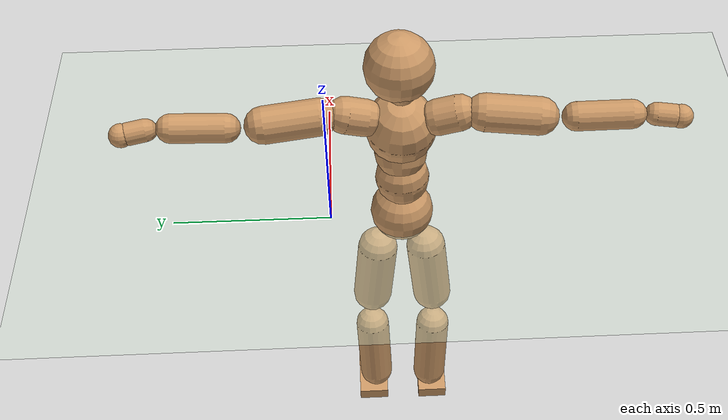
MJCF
<mujoco model="humanoid">
  <compiler coordinate="local"/>
  <default>
    <joint damping="0.0" armature="0.01" stiffness="0.0" limited="true"/>
    <geom conaffinity="1" condim="3" contype="7" margin="0.001" rgba="0.8 0.6 .4 1"/>
  </default>
  <asset>
    <texture type="skybox" builtin="gradient" rgb1=".4 .5 .6" rgb2="0 0 0" width="100" height="100"/>
    <texture builtin="flat" height="1278" mark="cross" markrgb="1 1 1" name="texgeom" random="0.01" rgb1="0.8 0.6 0.4" rgb2="0.8 0.6 0.4" type="cube" width="127"/>
    <texture builtin="checker" height="100" name="texplane" rgb1="0 0 0" rgb2="0.8 0.8 0.8" type="2d" width="100"/>
    <material name="MatPlane" reflectance="0.5" shininess="1" specular="1" texrepeat="60 60" texture="texplane"/>
    <material name="geom" texture="texgeom" texuniform="true"/>
  </asset>
  <worldbody>
    <light cutoff="100" diffuse="1 1 1" dir="-0 0 -1.3" directional="true" exponent="1" pos="0 0 1.3" specular=".1 .1 .1"/>
    <geom conaffinity="1" condim="3" name="floor" pos="0 0 0" rgba="0.8 0.9 0.8 1" size="100 100 .2" type="plane" material="MatPlane"/>
    <body name="Pelvis" pos="-0.002 -0.2262 0.0333">
      <freejoint name="Pelvis"/>
      <geom type="sphere" contype="1" conaffinity="1" density="500" size="0.0988" pos="0.0000 0.0000 0.0000" name="Pelvis"/>
      <body name="L_Hip" pos="-0.004 0.072 -0.0931">
        <joint name="L_Hip_x" type="hinge" pos="0 0 0" axis="1 0 0" user="250 2.5 1 500 10 2" armature="0.01" range="-90.0000 90.0000" damping="0" stiffness="0"/>
        <joint name="L_Hip_y" type="hinge" pos="0 0 0" axis="0 1 0" user="250 2.5 1 500 10 2" armature="0.01" range="-90.0000 90.0000" damping="0" stiffness="0"/>
        <joint name="L_Hip_z" type="hinge" pos="0 0 0" axis="0 0 1" user="250 2.5 1 500 10 2" armature="0.01" range="-90.0000 90.0000" damping="0" stiffness="0"/>
        <geom type="capsule" contype="1" conaffinity="1" density="500" fromto="-0.0011 0.0071 -0.0770 -0.0044 0.0284 -0.3081" size="0.0643" name="L_Hip"/>
        <body name="L_Knee" pos="-0.0055 0.0355 -0.3851">
          <joint name="L_Knee_x" type="hinge" pos="0 0 0" axis="1 0 0" user="250 2.5 1 500 10 2" armature="0.01" range="-5.6250 5.6250" damping="0" stiffness="0"/>
          <joint name="L_Knee_y" type="hinge" pos="0 0 0" axis="0 1 0" user="250 2.5 1 500 10 2" armature="0.01" range="0.0000 180.0000" damping="0" stiffness="0"/>
          <joint name="L_Knee_z" type="hinge" pos="0 0 0" axis="0 0 1" user="250 2.5 1 500 10 2" armature="0.01" range="-5.6250 5.6250" damping="0" stiffness="0"/>
          <geom type="capsule" contype="1" conaffinity="1" density="500" fromto="-0.0092 -0.0029 -0.0825 -0.0366 -0.0115 -0.3299" size="0.0562" name="L_Knee"/>
          <body name="L_Ankle" pos="-0.0458 -0.0144 -0.4124">
            <joint name="L_Ankle_x" type="hinge" pos="0 0 0" axis="1 0 0" user="150 2.5 1 500 10 2" armature="0.01" range="-45.0000 45.0000" damping="0" stiffness="0"/>
            <joint name="L_Ankle_y" type="hinge" pos="0 0 0" axis="0 1 0" user="150 2.5 1 500 10 2" armature="0.01" range="-90.0000 90.0000" damping="0" stiffness="0"/>
            <joint name="L_Ankle_z" type="hinge" pos="0 0 0" axis="0 0 1" user="150 2.5 1 500 10 2" armature="0.01" range="-45.0000 45.0000" damping="0" stiffness="0"/>
            <geom type="box" contype="1" conaffinity="1" density="500" pos="0.0613 0.0140 -0.0286" size="0.0875 0.0505 0.0215" quat="1.0000 0.0000 0.0000 0.0000" name="L_Ankle"/>
            <body name="L_Toe" pos="0.1227 0.0281 -0.0573">
              <joint name="L_Toe_x" type="hinge" pos="0 0 0" axis="1 0 0" user="150 1 1 500 1 1" armature="0.01" range="-180.0000 180.0000" damping="0" stiffness="0"/>
              <joint name="L_Toe_y" type="hinge" pos="0 0 0" axis="0 1 0" user="150 1 1 500 1 1" armature="0.01" range="-180.0000 180.0000" damping="0" stiffness="0"/>
              <joint name="L_Toe_z" type="hinge" pos="0 0 0" axis="0 0 1" user="150 1 1 500 1 1" armature="0.01" range="-180.0000 180.0000" damping="0" stiffness="0"/>
              <geom type="box" contype="1" conaffinity="1" density="500" pos="0.0623 -0.0140 0.0277" size="0.0211 0.0495 0.0205" quat="1.0000 0.0000 0.0000 0.0000" name="L_Toe"/>
            </body>
          </body>
        </body>
      </body>
      <body name="R_Hip" pos="-0.0018 -0.0704 -0.0923">
        <joint name="R_Hip_x" type="hinge" pos="0 0 0" axis="1 0 0" user="250 2.5 1 500 10 2" armature="0.01" range="-90.0000 90.0000" damping="0" stiffness="0"/>
        <joint name="R_Hip_y" type="hinge" pos="0 0 0" axis="0 1 0" user="250 2.5 1 500 10 2" armature="0.01" range="-90.0000 90.0000" damping="0" stiffness="0"/>
        <joint name="R_Hip_z" type="hinge" pos="0 0 0" axis="0 0 1" user="250 2.5 1 500 10 2" armature="0.01" range="-90.0000 90.0000" damping="0" stiffness="0"/>
        <geom type="capsule" contype="1" conaffinity="1" density="500" fromto="-0.0021 -0.0079 -0.0786 -0.0084 -0.0315 -0.3145" size="0.0632" name="R_Hip"/>
        <body name="R_Knee" pos="-0.0105 -0.0393 -0.3931">
          <joint name="R_Knee_x" type="hinge" pos="0 0 0" axis="1 0 0" user="250 2.5 1 500 10 2" armature="0.01" range="-5.6250 5.6250" damping="0" stiffness="0"/>
          <joint name="R_Knee_y" type="hinge" pos="0 0 0" axis="0 1 0" user="250 2.5 1 500 10 2" armature="0.01" range="0.0000 180.0000" damping="0" stiffness="0"/>
          <joint name="R_Knee_z" type="hinge" pos="0 0 0" axis="0 0 1" user="250 2.5 1 500 10 2" armature="0.01" range="-5.6250 5.6250" damping="0" stiffness="0"/>
          <geom type="capsule" contype="1" conaffinity="1" density="500" fromto="-0.0089 0.0033 -0.0827 -0.0356 0.0131 -0.3306" size="0.056" name="R_Knee"/>
          <body name="R_Ankle" pos="-0.0445 0.0164 -0.4133">
            <joint name="R_Ankle_x" type="hinge" pos="0 0 0" axis="1 0 0" user="150 1 1 500 10 2" armature="0.01" range="-45.0000 45.0000" damping="0" stiffness="0"/>
            <joint name="R_Ankle_y" type="hinge" pos="0 0 0" axis="0 1 0" user="150 1 1 500 10 2" armature="0.01" range="-90.0000 90.0000" damping="0" stiffness="0"/>
            <joint name="R_Ankle_z" type="hinge" pos="0 0 0" axis="0 0 1" user="150 1 1 500 10 2" armature="0.01" range="-45.0000 45.0000" damping="0" stiffness="0"/>
            <geom type="box" contype="1" conaffinity="1" density="500" pos="0.0634 -0.0144 -0.0250" size="0.0887 0.0499 0.0217" quat="1.0000 0.0000 0.0000 0.0000" name="R_Ankle"/>
            <body name="R_Toe" pos="0.1269 -0.0289 -0.05">
              <joint name="R_Toe_x" type="hinge" pos="0 0 0" axis="1 0 0" user="150 1 1 500 1 1" armature="0.01" range="-180.0000 180.0000" damping="0" stiffness="0"/>
              <joint name="R_Toe_y" type="hinge" pos="0 0 0" axis="0 1 0" user="150 1 1 500 1 1" armature="0.01" range="-180.0000 180.0000" damping="0" stiffness="0"/>
              <joint name="R_Toe_z" type="hinge" pos="0 0 0" axis="0 0 1" user="150 1 1 500 1 1" armature="0.01" range="-180.0000 180.0000" damping="0" stiffness="0"/>
              <geom type="box" contype="1" conaffinity="1" density="500" pos="0.0644 0.0144 0.0251" size="0.021 0.0496 0.0217" quat="1.0000 0.0000 0.0000 0.0000" name="R_Toe"/>
            </body>
          </body>
        </body>
      </body>
      <body name="Torso" pos="-0.0323 -0.0025 0.1129">
        <joint name="Torso_x" type="hinge" pos="0 0 0" axis="1 0 0" user="500 5 1 500 10 2" armature="0.01" range="-60.0000 60.0000" damping="0" stiffness="0"/>
        <joint name="Torso_y" type="hinge" pos="0 0 0" axis="0 1 0" user="500 5 1 500 10 2" armature="0.01" range="-60.0000 60.0000" damping="0" stiffness="0"/>
        <joint name="Torso_z" type="hinge" pos="0 0 0" axis="0 0 1" user="500 5 1 500 10 2" armature="0.01" range="-60.0000 60.0000" damping="0" stiffness="0"/>
        <geom type="capsule" contype="1" conaffinity="1" density="500" fromto="0.0000 0.0026 0.0609 0.0000 0.0032 0.0744" size="0.0818" name="Torso"/>
        <body name="Spine" pos="0.0001 0.0058 0.1352">
          <joint name="Spine_x" type="hinge" pos="0 0 0" axis="1 0 0" user="500 5 1 500 10 2" armature="0.01" range="-60.0000 60.0000" damping="0" stiffness="0"/>
          <joint name="Spine_y" type="hinge" pos="0 0 0" axis="0 1 0" user="500 5 1 500 10 2" armature="0.01" range="-60.0000 60.0000" damping="0" stiffness="0"/>
          <joint name="Spine_z" type="hinge" pos="0 0 0" axis="0 0 1" user="500 5 1 500 10 2" armature="0.01" range="-60.0000 60.0000" damping="0" stiffness="0"/>
          <geom type="capsule" contype="1" conaffinity="1" density="500" fromto="0.0116 0.0006 0.0243 0.0142 0.0007 0.0297" size="0.0798" name="Spine"/>
          <body name="Chest" pos="0.0259 0.0013 0.0539">
            <joint name="Chest_x" type="hinge" pos="0 0 0" axis="1 0 0" user="500 5 1 500 10 2" armature="0.01" range="-60.0000 60.0000" damping="0" stiffness="0"/>
            <joint name="Chest_y" type="hinge" pos="0 0 0" axis="0 1 0" user="500 5 1 500 10 2" armature="0.01" range="-60.0000 60.0000" damping="0" stiffness="0"/>
            <joint name="Chest_z" type="hinge" pos="0 0 0" axis="0 0 1" user="500 5 1 500 10 2" armature="0.01" range="-60.0000 60.0000" damping="0" stiffness="0"/>
            <geom type="capsule" contype="1" conaffinity="1" density="500" fromto="-0.0170 -0.0009 0.0699 -0.0208 -0.0011 0.0854" size="0.1051" name="Chest"/>
            <body name="Neck" pos="-0.0425 -0.0029 0.218">
              <joint name="Neck_x" type="hinge" pos="0 0 0" axis="1 0 0" user="150 1 1 250 50 4" armature="0.01" range="-5.6250 5.6250" damping="0" stiffness="0"/>
              <joint name="Neck_y" type="hinge" pos="0 0 0" axis="0 1 0" user="150 1 1 250 50 4" armature="0.01" range="-90.0000 90.0000" damping="0" stiffness="0"/>
              <joint name="Neck_z" type="hinge" pos="0 0 0" axis="0 0 1" user="150 1 1 250 50 4" armature="0.01" range="-90.0000 90.0000" damping="0" stiffness="0"/>
              <geom type="capsule" contype="1" conaffinity="1" density="500" fromto="0.0101 0.0010 0.0127 0.0405 0.0041 0.0507" size="0.0454" name="Neck"/>
              <body name="Head" pos="0.0507 0.0052 0.0634">
                <joint name="Head_x" type="hinge" pos="0 0 0" axis="1 0 0" user="150 1 1 250 50 4" armature="0.01" range="-5.6250 5.6250" damping="0" stiffness="0"/>
                <joint name="Head_y" type="hinge" pos="0 0 0" axis="0 1 0" user="150 1 1 250 50 4" armature="0.01" range="-90.0000 90.0000" damping="0" stiffness="0"/>
                <joint name="Head_z" type="hinge" pos="0 0 0" axis="0 0 1" user="150 1 1 250 50 4" armature="0.01" range="-90.0000 90.0000" damping="0" stiffness="0"/>
                <geom type="sphere" contype="1" conaffinity="1" density="500" size="0.1032" pos="0.0000 0.0000 0.0000" name="Head"/>
              </body>
            </body>
            <body name="L_Thorax" pos="-0.0331 0.0835 0.1255">
              <joint name="L_Thorax_x" type="hinge" pos="0 0 0" axis="1 0 0" user="200 2 1 500 50 4" armature="0.01" range="-5.6250 5.6250" damping="0" stiffness="0"/>
              <joint name="L_Thorax_y" type="hinge" pos="0 0 0" axis="0 1 0" user="200 2 1 500 50 4" armature="0.01" range="-5.6250 5.6250" damping="0" stiffness="0"/>
              <joint name="L_Thorax_z" type="hinge" pos="0 0 0" axis="0 0 1" user="200 2 1 500 50 4" armature="0.01" range="-5.6250 5.6250" damping="0" stiffness="0"/>
              <geom type="capsule" contype="1" conaffinity="1" density="500" fromto="-0.0021 0.0192 0.0063 -0.0086 0.0768 0.0251" size="0.0551" name="L_Thorax"/>
              <body name="L_Shoulder" pos="-0.0107 0.096 0.0314">
                <joint name="L_Shoulder_x" type="hinge" pos="0 0 0" axis="1 0 0" user="200 2 1 500 50 4" armature="0.01" range="-720.0000 720.0000" damping="0" stiffness="0"/>
                <joint name="L_Shoulder_y" type="hinge" pos="0 0 0" axis="0 1 0" user="200 2 1 500 50 4" armature="0.01" range="-720.0000 720.0000" damping="0" stiffness="0"/>
                <joint name="L_Shoulder_z" type="hinge" pos="0 0 0" axis="0 0 1" user="200 2 1 500 50 4" armature="0.01" range="-720.0000 720.0000" damping="0" stiffness="0"/>
                <geom type="capsule" contype="1" conaffinity="1" density="500" fromto="-0.0059 0.0533 -0.0027 -0.0235 0.2134 -0.0109" size="0.0552" name="L_Shoulder"/>
                <body name="L_Elbow" pos="-0.0293 0.2667 -0.0136">
                  <joint name="L_Elbow_x" type="hinge" pos="0 0 0" axis="1 0 0" user="150 1 1 150 10 2" armature="0.01" range="-5.6250 5.6250" damping="0" stiffness="0"/>
                  <joint name="L_Elbow_y" type="hinge" pos="0 0 0" axis="0 1 0" user="150 1 1 150 10 2" armature="0.01" range="-5.6250 5.6250" damping="0" stiffness="0"/>
                  <joint name="L_Elbow_z" type="hinge" pos="0 0 0" axis="0 0 1" user="150 1 1 150 10 2" armature="0.01" range="-180.0000 0.0000" damping="0" stiffness="0"/>
                  <geom type="capsule" contype="1" conaffinity="1" density="500" fromto="-0.0002 0.0517 0.0020 -0.0007 0.2069 0.0078" size="0.0427" name="L_Elbow"/>
                  <body name="L_Wrist" pos="-0.0008 0.2586 0.0098">
                    <joint name="L_Wrist_x" type="hinge" pos="0 0 0" axis="1 0 0" user="100 1 1 150 1 1" armature="0.01" range="-180.0000 180.0000" damping="0" stiffness="0"/>
                    <joint name="L_Wrist_y" type="hinge" pos="0 0 0" axis="0 1 0" user="100 1 1 150 1 1" armature="0.01" range="-180.0000 180.0000" damping="0" stiffness="0"/>
                    <joint name="L_Wrist_z" type="hinge" pos="0 0 0" axis="0 0 1" user="100 1 1 150 1 1" armature="0.01" range="-180.0000 180.0000" damping="0" stiffness="0"/>
                    <geom type="capsule" contype="1" conaffinity="1" density="500" fromto="-0.0032 0.0175 -0.0015 -0.0127 0.0699 -0.0062" size="0.0331" name="L_Wrist"/>
                    <body name="L_Hand" pos="-0.0159 0.0873 -0.0077">
                      <joint name="L_Hand_x" type="hinge" pos="0 0 0" axis="1 0 0" user="50 1 1 150 1 1" armature="0.01" range="-180.0000 180.0000" damping="0" stiffness="0"/>
                      <joint name="L_Hand_y" type="hinge" pos="0 0 0" axis="0 1 0" user="50 1 1 150 1 1" armature="0.01" range="-180.0000 180.0000" damping="0" stiffness="0"/>
                      <joint name="L_Hand_z" type="hinge" pos="0 0 0" axis="0 0 1" user="50 1 1 150 1 1" armature="0.01" range="-180.0000 180.0000" damping="0" stiffness="0"/>
                      <geom type="sphere" contype="1" conaffinity="1" density="500" size="0.0349" pos="0.0000 0.0000 0.0000" name="L_Hand"/>
                    </body>
                  </body>
                </body>
              </body>
            </body>
            <body name="R_Thorax" pos="-0.0377 -0.0867 0.1223">
              <joint name="R_Thorax_x" type="hinge" pos="0 0 0" axis="1 0 0" user="200 2 1 150 10 2" armature="0.01" range="-5.6250 5.6250" damping="0" stiffness="0"/>
              <joint name="R_Thorax_y" type="hinge" pos="0 0 0" axis="0 1 0" user="200 2 1 150 10 2" armature="0.01" range="-5.6250 5.6250" damping="0" stiffness="0"/>
              <joint name="R_Thorax_z" type="hinge" pos="0 0 0" axis="0 0 1" user="200 2 1 150 10 2" armature="0.01" range="-5.6250 5.6250" damping="0" stiffness="0"/>
              <geom type="capsule" contype="1" conaffinity="1" density="500" fromto="-0.0020 -0.0203 0.0068 -0.0079 -0.0811 0.0271" size="0.054" name="R_Thorax"/>
              <body name="R_Shoulder" pos="-0.0099 -0.1014 0.0338">
                <joint name="R_Shoulder_x" type="hinge" pos="0 0 0" axis="1 0 0" user="200 2 1 250 10 2" armature="0.01" range="-720.0000 720.0000" damping="0" stiffness="0"/>
                <joint name="R_Shoulder_y" type="hinge" pos="0 0 0" axis="0 1 0" user="200 2 1 250 10 2" armature="0.01" range="-720.0000 720.0000" damping="0" stiffness="0"/>
                <joint name="R_Shoulder_z" type="hinge" pos="0 0 0" axis="0 0 1" user="200 2 1 250 10 2" armature="0.01" range="-720.0000 720.0000" damping="0" stiffness="0"/>
                <geom type="capsule" contype="1" conaffinity="1" density="500" fromto="-0.0047 -0.0522 -0.0027 -0.0190 -0.2089 -0.0109" size="0.0565" name="R_Shoulder"/>
                <body name="R_Elbow" pos="-0.0237 -0.2612 -0.0136">
                  <joint name="R_Elbow_x" type="hinge" pos="0 0 0" axis="1 0 0" user="150 1 1 150 10 2" armature="0.01" range="-5.6250 5.6250" damping="0" stiffness="0"/>
                  <joint name="R_Elbow_y" type="hinge" pos="0 0 0" axis="0 1 0" user="150 1 1 150 10 2" armature="0.01" range="-5.6250 5.6250" damping="0" stiffness="0"/>
                  <joint name="R_Elbow_z" type="hinge" pos="0 0 0" axis="0 0 1" user="150 1 1 150 10 2" armature="0.01" range="0.0000 180.0000" damping="0" stiffness="0"/>
                  <geom type="capsule" contype="1" conaffinity="1" density="500" fromto="-0.0011 -0.0527 0.0016 -0.0044 -0.2107 0.0064" size="0.043" name="R_Elbow"/>
                  <body name="R_Wrist" pos="-0.0055 -0.2634 0.008">
                    <joint name="R_Wrist_x" type="hinge" pos="0 0 0" axis="1 0 0" user="100 1 1 150 1 1" armature="0.01" range="-180.0000 180.0000" damping="0" stiffness="0"/>
                    <joint name="R_Wrist_y" type="hinge" pos="0 0 0" axis="0 1 0" user="100 1 1 150 1 1" armature="0.01" range="-180.0000 180.0000" damping="0" stiffness="0"/>
                    <joint name="R_Wrist_z" type="hinge" pos="0 0 0" axis="0 0 1" user="100 1 1 150 1 1" armature="0.01" range="-180.0000 180.0000" damping="0" stiffness="0"/>
                    <geom type="capsule" contype="1" conaffinity="1" density="500" fromto="-0.0021 -0.0175 -0.0012 -0.0084 -0.0702 -0.0046" size="0.0339" name="R_Wrist"/>
                    <body name="R_Hand" pos="-0.0105 -0.0877 -0.0058">
                      <joint name="R_Hand_x" type="hinge" pos="0 0 0" axis="1 0 0" user="50 1 1 150 1 1" armature="0.01" range="-180.0000 180.0000" damping="0" stiffness="0"/>
                      <joint name="R_Hand_y" type="hinge" pos="0 0 0" axis="0 1 0" user="50 1 1 150 1 1" armature="0.01" range="-180.0000 180.0000" damping="0" stiffness="0"/>
                      <joint name="R_Hand_z" type="hinge" pos="0 0 0" axis="0 0 1" user="50 1 1 150 1 1" armature="0.01" range="-180.0000 180.0000" damping="0" stiffness="0"/>
                      <geom type="sphere" contype="1" conaffinity="1" density="500" size="0.0352" pos="0.0000 0.0000 0.0000" name="R_Hand"/>
                    </body>
                  </body>
                </body>
              </body>
            </body>
          </body>
        </body>
      </body>
    </body>
  </worldbody>
  <actuator>
    <motor name="L_Hip_x" joint="L_Hip_x" gear="1"/>
    <motor name="L_Hip_y" joint="L_Hip_y" gear="1"/>
    <motor name="L_Hip_z" joint="L_Hip_z" gear="1"/>
    <motor name="L_Knee_x" joint="L_Knee_x" gear="1"/>
    <motor name="L_Knee_y" joint="L_Knee_y" gear="1"/>
    <motor name="L_Knee_z" joint="L_Knee_z" gear="1"/>
    <motor name="L_Ankle_x" joint="L_Ankle_x" gear="1"/>
    <motor name="L_Ankle_y" joint="L_Ankle_y" gear="1"/>
    <motor name="L_Ankle_z" joint="L_Ankle_z" gear="1"/>
    <motor name="L_Toe_x" joint="L_Toe_x" gear="1"/>
    <motor name="L_Toe_y" joint="L_Toe_y" gear="1"/>
    <motor name="L_Toe_z" joint="L_Toe_z" gear="1"/>
    <motor name="R_Hip_x" joint="R_Hip_x" gear="1"/>
    <motor name="R_Hip_y" joint="R_Hip_y" gear="1"/>
    <motor name="R_Hip_z" joint="R_Hip_z" gear="1"/>
    <motor name="R_Knee_x" joint="R_Knee_x" gear="1"/>
    <motor name="R_Knee_y" joint="R_Knee_y" gear="1"/>
    <motor name="R_Knee_z" joint="R_Knee_z" gear="1"/>
    <motor name="R_Ankle_x" joint="R_Ankle_x" gear="1"/>
    <motor name="R_Ankle_y" joint="R_Ankle_y" gear="1"/>
    <motor name="R_Ankle_z" joint="R_Ankle_z" gear="1"/>
    <motor name="R_Toe_x" joint="R_Toe_x" gear="1"/>
    <motor name="R_Toe_y" joint="R_Toe_y" gear="1"/>
    <motor name="R_Toe_z" joint="R_Toe_z" gear="1"/>
    <motor name="Torso_x" joint="Torso_x" gear="1"/>
    <motor name="Torso_y" joint="Torso_y" gear="1"/>
    <motor name="Torso_z" joint="Torso_z" gear="1"/>
    <motor name="Spine_x" joint="Spine_x" gear="1"/>
    <motor name="Spine_y" joint="Spine_y" gear="1"/>
    <motor name="Spine_z" joint="Spine_z" gear="1"/>
    <motor name="Chest_x" joint="Chest_x" gear="1"/>
    <motor name="Chest_y" joint="Chest_y" gear="1"/>
    <motor name="Chest_z" joint="Chest_z" gear="1"/>
    <motor name="Neck_x" joint="Neck_x" gear="1"/>
    <motor name="Neck_y" joint="Neck_y" gear="1"/>
    <motor name="Neck_z" joint="Neck_z" gear="1"/>
    <motor name="Head_x" joint="Head_x" gear="1"/>
    <motor name="Head_y" joint="Head_y" gear="1"/>
    <motor name="Head_z" joint="Head_z" gear="1"/>
    <motor name="L_Thorax_x" joint="L_Thorax_x" gear="1"/>
    <motor name="L_Thorax_y" joint="L_Thorax_y" gear="1"/>
    <motor name="L_Thorax_z" joint="L_Thorax_z" gear="1"/>
    <motor name="L_Shoulder_x" joint="L_Shoulder_x" gear="1"/>
    <motor name="L_Shoulder_y" joint="L_Shoulder_y" gear="1"/>
    <motor name="L_Shoulder_z" joint="L_Shoulder_z" gear="1"/>
    <motor name="L_Elbow_x" joint="L_Elbow_x" gear="1"/>
    <motor name="L_Elbow_y" joint="L_Elbow_y" gear="1"/>
    <motor name="L_Elbow_z" joint="L_Elbow_z" gear="1"/>
    <motor name="L_Wrist_x" joint="L_Wrist_x" gear="1"/>
    <motor name="L_Wrist_y" joint="L_Wrist_y" gear="1"/>
    <motor name="L_Wrist_z" joint="L_Wrist_z" gear="1"/>
    <motor name="L_Hand_x" joint="L_Hand_x" gear="1"/>
    <motor name="L_Hand_y" joint="L_Hand_y" gear="1"/>
    <motor name="L_Hand_z" joint="L_Hand_z" gear="1"/>
    <motor name="R_Thorax_x" joint="R_Thorax_x" gear="1"/>
    <motor name="R_Thorax_y" joint="R_Thorax_y" gear="1"/>
    <motor name="R_Thorax_z" joint="R_Thorax_z" gear="1"/>
    <motor name="R_Shoulder_x" joint="R_Shoulder_x" gear="1"/>
    <motor name="R_Shoulder_y" joint="R_Shoulder_y" gear="1"/>
    <motor name="R_Shoulder_z" joint="R_Shoulder_z" gear="1"/>
    <motor name="R_Elbow_x" joint="R_Elbow_x" gear="1"/>
    <motor name="R_Elbow_y" joint="R_Elbow_y" gear="1"/>
    <motor name="R_Elbow_z" joint="R_Elbow_z" gear="1"/>
    <motor name="R_Wrist_x" joint="R_Wrist_x" gear="1"/>
    <motor name="R_Wrist_y" joint="R_Wrist_y" gear="1"/>
    <motor name="R_Wrist_z" joint="R_Wrist_z" gear="1"/>
    <motor name="R_Hand_x" joint="R_Hand_x" gear="1"/>
    <motor name="R_Hand_y" joint="R_Hand_y" gear="1"/>
    <motor name="R_Hand_z" joint="R_Hand_z" gear="1"/>
  </actuator>
  <contact>
    <exclude body1="Torso" body2="Chest"/>
    <exclude body1="Head" body2="Chest"/>
    <exclude body1="R_Knee" body2="R_Toe"/>
    <exclude body1="R_Knee" body2="L_Ankle"/>
    <exclude body1="R_Knee" body2="L_Toe"/>
    <exclude body1="L_Knee" body2="L_Toe"/>
    <exclude body1="L_Knee" body2="R_Ankle"/>
    <exclude body1="L_Knee" body2="R_Toe"/>
    <exclude body1="L_Shoulder" body2="Chest"/>
    <exclude body1="R_Shoulder" body2="Chest"/>
  </contact>
  <sensor/>
  <size njmax="700" nconmax="700"/>
</mujoco>
